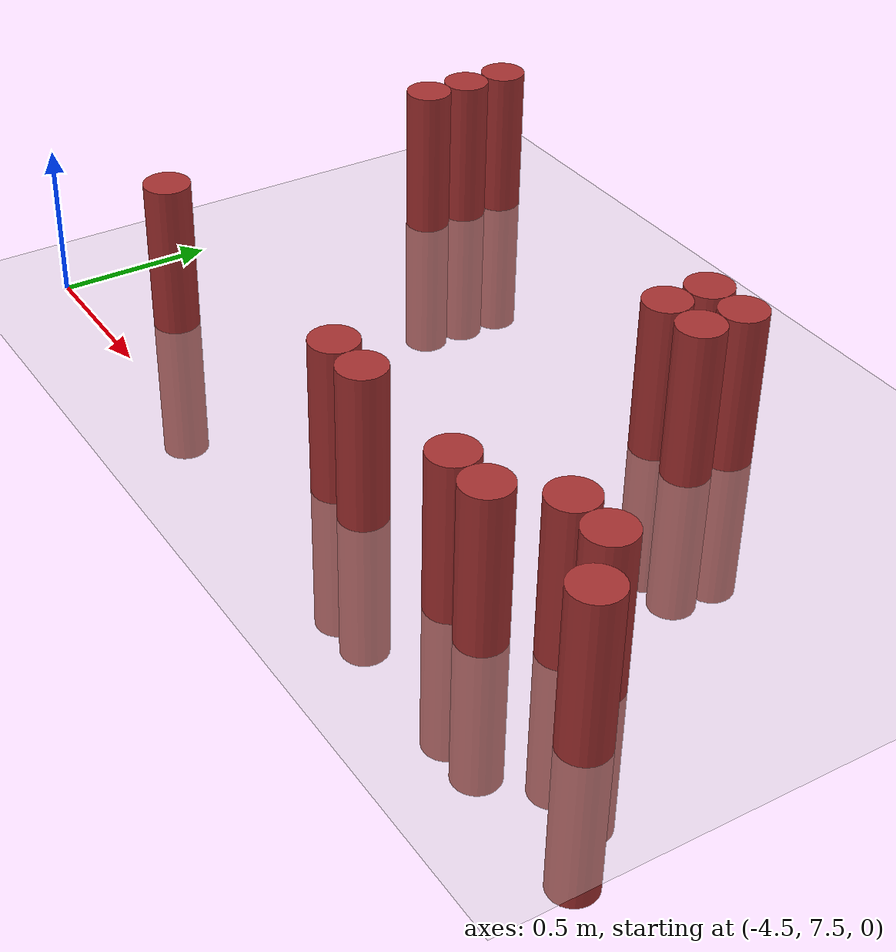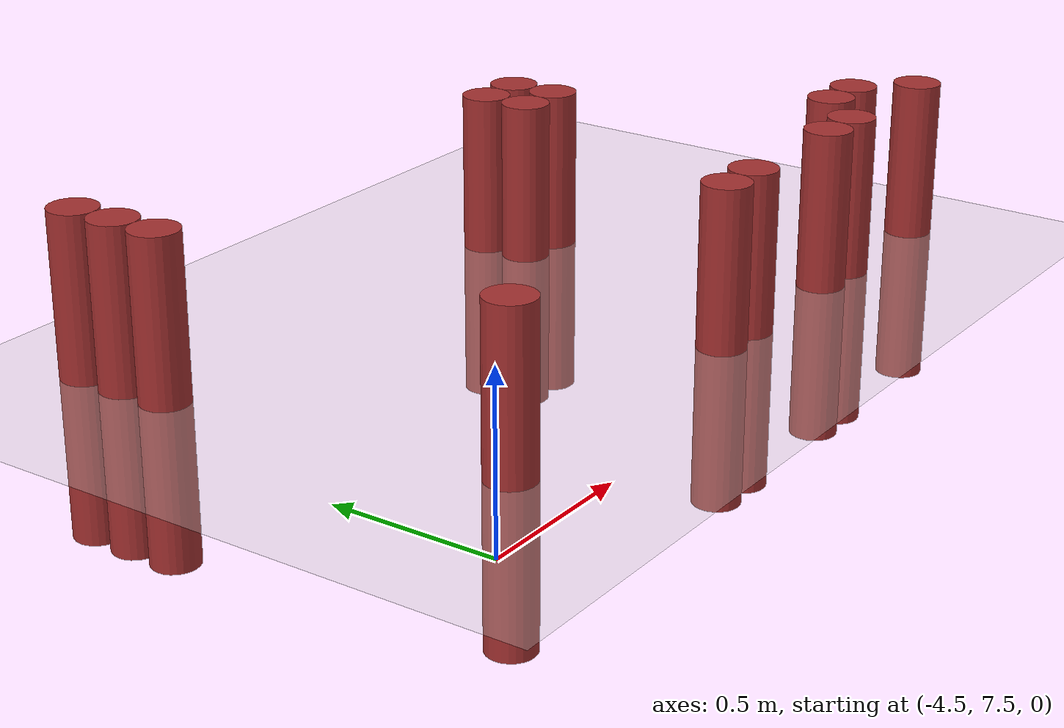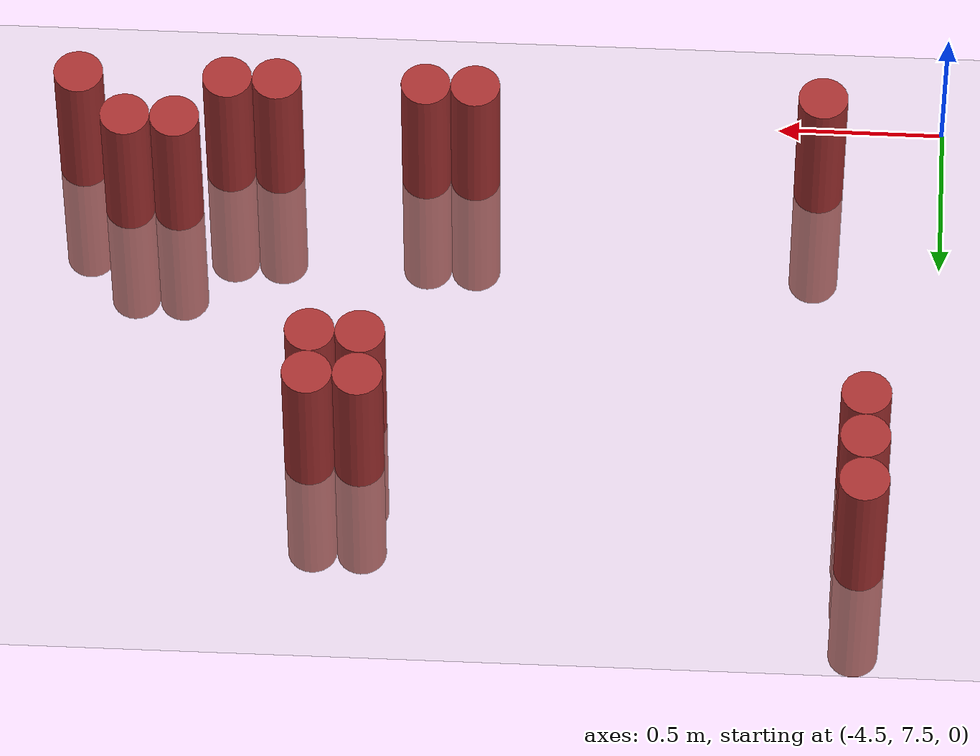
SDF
<sdf version="1.6">
 <world name="default">
  <model name="ground_plane">
   <static>1</static>
   <link name="link">
    <collision name="collision">
     <geometry><plane><normal>0 0 1</normal><size>100 100</size></plane></geometry>
     <surface><friction><ode><mu>100</mu><mu2>50</mu2></ode></friction></surface>
    </collision>
    <visual name="visual">
     <cast_shadows>0</cast_shadows>
     <geometry><plane><normal>0 0 1</normal><size>100 100</size></plane></geometry>
     <material>
      <script><uri>file://media/materials/scripts/gazebo.material</uri><name>Gazebo/Grey</name></script>
     </material>
    </visual>
   </link>
  </model>
  <model name="unit_cylinder_134">
   <static>1</static>
   <pose>-4.275000 8.775000 0.000000 0.000000 0.000000 0.000000</pose>
   <link name="link">
    <inertial>
     <mass>1</mass>
     <inertia><ixx>0.145833</ixx><ixy>0</ixy><ixz>0</ixz><iyy>0.145833</iyy><iyz>0</iyz><izz>0.125</izz></inertia>
    </inertial>
    <collision name="collision">
     <geometry><cylinder><radius>0.075000</radius><length>1</length></cylinder></geometry>
    </collision>
    <visual name="visual">
     <geometry><cylinder><radius>0.075000</radius><length>1</length></cylinder></geometry>
     <material>
      <ambient>0.648000 0.192000 0.192000 1</ambient>
      <diffuse>0.648000 0.192000 0.192000 1</diffuse>
     </material>
     <material>
      <script><name>Gazebo/Grey</name><uri>file://media/materials/scripts/gazebo.material</uri></script>
     </material>
    </visual>
   </link>
  </model>
  <model name="unit_cylinder_135">
   <static>1</static>
   <pose>-4.275000 8.925000 0.000000 0.000000 0.000000 0.000000</pose>
   <link name="link">
    <inertial>
     <mass>1</mass>
     <inertia><ixx>0.145833</ixx><ixy>0</ixy><ixz>0</ixz><iyy>0.145833</iyy><iyz>0</iyz><izz>0.125</izz></inertia>
    </inertial>
    <collision name="collision">
     <geometry><cylinder><radius>0.075000</radius><length>1</length></cylinder></geometry>
    </collision>
    <visual name="visual">
     <geometry><cylinder><radius>0.075000</radius><length>1</length></cylinder></geometry>
     <material>
      <ambient>0.648000 0.192000 0.192000 1</ambient>
      <diffuse>0.648000 0.192000 0.192000 1</diffuse>
     </material>
     <material>
      <script><name>Gazebo/Grey</name><uri>file://media/materials/scripts/gazebo.material</uri></script>
     </material>
    </visual>
   </link>
  </model>
  <model name="unit_cylinder_136">
   <static>1</static>
   <pose>-4.275000 9.075000 0.000000 0.000000 0.000000 0.000000</pose>
   <link name="link">
    <inertial>
     <mass>1</mass>
     <inertia><ixx>0.145833</ixx><ixy>0</ixy><ixz>0</ixz><iyy>0.145833</iyy><iyz>0</iyz><izz>0.125</izz></inertia>
    </inertial>
    <collision name="collision">
     <geometry><cylinder><radius>0.075000</radius><length>1</length></cylinder></geometry>
    </collision>
    <visual name="visual">
     <geometry><cylinder><radius>0.075000</radius><length>1</length></cylinder></geometry>
     <material>
      <ambient>0.648000 0.192000 0.192000 1</ambient>
      <diffuse>0.648000 0.192000 0.192000 1</diffuse>
     </material>
     <material>
      <script><name>Gazebo/Grey</name><uri>file://media/materials/scripts/gazebo.material</uri></script>
     </material>
    </visual>
   </link>
  </model>
  <model name="unit_cylinder_139">
   <static>1</static>
   <pose>-4.125000 7.725000 0.000000 0.000000 0.000000 0.000000</pose>
   <link name="link">
    <inertial>
     <mass>1</mass>
     <inertia><ixx>0.145833</ixx><ixy>0</ixy><ixz>0</ixz><iyy>0.145833</iyy><iyz>0</iyz><izz>0.125</izz></inertia>
    </inertial>
    <collision name="collision">
     <geometry><cylinder><radius>0.075000</radius><length>1</length></cylinder></geometry>
    </collision>
    <visual name="visual">
     <geometry><cylinder><radius>0.075000</radius><length>1</length></cylinder></geometry>
     <material>
      <ambient>0.648000 0.192000 0.192000 1</ambient>
      <diffuse>0.648000 0.192000 0.192000 1</diffuse>
     </material>
     <material>
      <script><name>Gazebo/Grey</name><uri>file://media/materials/scripts/gazebo.material</uri></script>
     </material>
    </visual>
   </link>
  </model>
  <model name="unit_cylinder_142">
   <static>1</static>
   <pose>-3.075000 7.725000 0.000000 0.000000 0.000000 0.000000</pose>
   <link name="link">
    <inertial>
     <mass>1</mass>
     <inertia><ixx>0.145833</ixx><ixy>0</ixy><ixz>0</ixz><iyy>0.145833</iyy><iyz>0</iyz><izz>0.125</izz></inertia>
    </inertial>
    <collision name="collision">
     <geometry><cylinder><radius>0.075000</radius><length>1</length></cylinder></geometry>
    </collision>
    <visual name="visual">
     <geometry><cylinder><radius>0.075000</radius><length>1</length></cylinder></geometry>
     <material>
      <ambient>0.648000 0.192000 0.192000 1</ambient>
      <diffuse>0.648000 0.192000 0.192000 1</diffuse>
     </material>
     <material>
      <script><name>Gazebo/Grey</name><uri>file://media/materials/scripts/gazebo.material</uri></script>
     </material>
    </visual>
   </link>
  </model>
  <model name="unit_cylinder_143">
   <static>1</static>
   <pose>-2.925000 7.725000 0.000000 0.000000 0.000000 0.000000</pose>
   <link name="link">
    <inertial>
     <mass>1</mass>
     <inertia><ixx>0.145833</ixx><ixy>0</ixy><ixz>0</ixz><iyy>0.145833</iyy><iyz>0</iyz><izz>0.125</izz></inertia>
    </inertial>
    <collision name="collision">
     <geometry><cylinder><radius>0.075000</radius><length>1</length></cylinder></geometry>
    </collision>
    <visual name="visual">
     <geometry><cylinder><radius>0.075000</radius><length>1</length></cylinder></geometry>
     <material>
      <ambient>0.648000 0.192000 0.192000 1</ambient>
      <diffuse>0.648000 0.192000 0.192000 1</diffuse>
     </material>
     <material>
      <script><name>Gazebo/Grey</name><uri>file://media/materials/scripts/gazebo.material</uri></script>
     </material>
    </visual>
   </link>
  </model>
  <model name="unit_cylinder_147">
   <static>1</static>
   <pose>-2.775000 8.625000 0.000000 0.000000 0.000000 0.000000</pose>
   <link name="link">
    <inertial>
     <mass>1</mass>
     <inertia><ixx>0.145833</ixx><ixy>0</ixy><ixz>0</ixz><iyy>0.145833</iyy><iyz>0</iyz><izz>0.125</izz></inertia>
    </inertial>
    <collision name="collision">
     <geometry><cylinder><radius>0.075000</radius><length>1</length></cylinder></geometry>
    </collision>
    <visual name="visual">
     <geometry><cylinder><radius>0.075000</radius><length>1</length></cylinder></geometry>
     <material>
      <ambient>0.648000 0.192000 0.192000 1</ambient>
      <diffuse>0.648000 0.192000 0.192000 1</diffuse>
     </material>
     <material>
      <script><name>Gazebo/Grey</name><uri>file://media/materials/scripts/gazebo.material</uri></script>
     </material>
    </visual>
   </link>
  </model>
  <model name="unit_cylinder_148">
   <static>1</static>
   <pose>-2.775000 8.775000 0.000000 0.000000 0.000000 0.000000</pose>
   <link name="link">
    <inertial>
     <mass>1</mass>
     <inertia><ixx>0.145833</ixx><ixy>0</ixy><ixz>0</ixz><iyy>0.145833</iyy><iyz>0</iyz><izz>0.125</izz></inertia>
    </inertial>
    <collision name="collision">
     <geometry><cylinder><radius>0.075000</radius><length>1</length></cylinder></geometry>
    </collision>
    <visual name="visual">
     <geometry><cylinder><radius>0.075000</radius><length>1</length></cylinder></geometry>
     <material>
      <ambient>0.648000 0.192000 0.192000 1</ambient>
      <diffuse>0.648000 0.192000 0.192000 1</diffuse>
     </material>
     <material>
      <script><name>Gazebo/Grey</name><uri>file://media/materials/scripts/gazebo.material</uri></script>
     </material>
    </visual>
   </link>
  </model>
  <model name="unit_cylinder_153">
   <static>1</static>
   <pose>-2.625000 8.625000 0.000000 0.000000 0.000000 0.000000</pose>
   <link name="link">
    <inertial>
     <mass>1</mass>
     <inertia><ixx>0.145833</ixx><ixy>0</ixy><ixz>0</ixz><iyy>0.145833</iyy><iyz>0</iyz><izz>0.125</izz></inertia>
    </inertial>
    <collision name="collision">
     <geometry><cylinder><radius>0.075000</radius><length>1</length></cylinder></geometry>
    </collision>
    <visual name="visual">
     <geometry><cylinder><radius>0.075000</radius><length>1</length></cylinder></geometry>
     <material>
      <ambient>0.648000 0.192000 0.192000 1</ambient>
      <diffuse>0.648000 0.192000 0.192000 1</diffuse>
     </material>
     <material>
      <script><name>Gazebo/Grey</name><uri>file://media/materials/scripts/gazebo.material</uri></script>
     </material>
    </visual>
   </link>
  </model>
  <model name="unit_cylinder_154">
   <static>1</static>
   <pose>-2.625000 8.775000 0.000000 0.000000 0.000000 0.000000</pose>
   <link name="link">
    <inertial>
     <mass>1</mass>
     <inertia><ixx>0.145833</ixx><ixy>0</ixy><ixz>0</ixz><iyy>0.145833</iyy><iyz>0</iyz><izz>0.125</izz></inertia>
    </inertial>
    <collision name="collision">
     <geometry><cylinder><radius>0.075000</radius><length>1</length></cylinder></geometry>
    </collision>
    <visual name="visual">
     <geometry><cylinder><radius>0.075000</radius><length>1</length></cylinder></geometry>
     <material>
      <ambient>0.648000 0.192000 0.192000 1</ambient>
      <diffuse>0.648000 0.192000 0.192000 1</diffuse>
     </material>
     <material>
      <script><name>Gazebo/Grey</name><uri>file://media/materials/scripts/gazebo.material</uri></script>
     </material>
    </visual>
   </link>
  </model>
  <model name="unit_cylinder_157">
   <static>1</static>
   <pose>-2.475000 7.725000 0.000000 0.000000 0.000000 0.000000</pose>
   <link name="link">
    <inertial>
     <mass>1</mass>
     <inertia><ixx>0.145833</ixx><ixy>0</ixy><ixz>0</ixz><iyy>0.145833</iyy><iyz>0</iyz><izz>0.125</izz></inertia>
    </inertial>
    <collision name="collision">
     <geometry><cylinder><radius>0.075000</radius><length>1</length></cylinder></geometry>
    </collision>
    <visual name="visual">
     <geometry><cylinder><radius>0.075000</radius><length>1</length></cylinder></geometry>
     <material>
      <ambient>0.648000 0.192000 0.192000 1</ambient>
      <diffuse>0.648000 0.192000 0.192000 1</diffuse>
     </material>
     <material>
      <script><name>Gazebo/Grey</name><uri>file://media/materials/scripts/gazebo.material</uri></script>
     </material>
    </visual>
   </link>
  </model>
  <model name="unit_cylinder_162">
   <static>1</static>
   <pose>-2.325000 7.725000 0.000000 0.000000 0.000000 0.000000</pose>
   <link name="link">
    <inertial>
     <mass>1</mass>
     <inertia><ixx>0.145833</ixx><ixy>0</ixy><ixz>0</ixz><iyy>0.145833</iyy><iyz>0</iyz><izz>0.125</izz></inertia>
    </inertial>
    <collision name="collision">
     <geometry><cylinder><radius>0.075000</radius><length>1</length></cylinder></geometry>
    </collision>
    <visual name="visual">
     <geometry><cylinder><radius>0.075000</radius><length>1</length></cylinder></geometry>
     <material>
      <ambient>0.648000 0.192000 0.192000 1</ambient>
      <diffuse>0.648000 0.192000 0.192000 1</diffuse>
     </material>
     <material>
      <script><name>Gazebo/Grey</name><uri>file://media/materials/scripts/gazebo.material</uri></script>
     </material>
    </visual>
   </link>
  </model>
  <model name="unit_cylinder_164">
   <static>1</static>
   <pose>-2.175000 7.875000 0.000000 0.000000 0.000000 0.000000</pose>
   <link name="link">
    <inertial>
     <mass>1</mass>
     <inertia><ixx>0.145833</ixx><ixy>0</ixy><ixz>0</ixz><iyy>0.145833</iyy><iyz>0</iyz><izz>0.125</izz></inertia>
    </inertial>
    <collision name="collision">
     <geometry><cylinder><radius>0.075000</radius><length>1</length></cylinder></geometry>
    </collision>
    <visual name="visual">
     <geometry><cylinder><radius>0.075000</radius><length>1</length></cylinder></geometry>
     <material>
      <ambient>0.648000 0.192000 0.192000 1</ambient>
      <diffuse>0.648000 0.192000 0.192000 1</diffuse>
     </material>
     <material>
      <script><name>Gazebo/Grey</name><uri>file://media/materials/scripts/gazebo.material</uri></script>
     </material>
    </visual>
   </link>
  </model>
  <model name="unit_cylinder_165">
   <static>1</static>
   <pose>-2.025000 7.875000 0.000000 0.000000 0.000000 0.000000</pose>
   <link name="link">
    <inertial>
     <mass>1</mass>
     <inertia><ixx>0.145833</ixx><ixy>0</ixy><ixz>0</ixz><iyy>0.145833</iyy><iyz>0</iyz><izz>0.125</izz></inertia>
    </inertial>
    <collision name="collision">
     <geometry><cylinder><radius>0.075000</radius><length>1</length></cylinder></geometry>
    </collision>
    <visual name="visual">
     <geometry><cylinder><radius>0.075000</radius><length>1</length></cylinder></geometry>
     <material>
      <ambient>0.648000 0.192000 0.192000 1</ambient>
      <diffuse>0.648000 0.192000 0.192000 1</diffuse>
     </material>
     <material>
      <script><name>Gazebo/Grey</name><uri>file://media/materials/scripts/gazebo.material</uri></script>
     </material>
    </visual>
   </link>
  </model>
  <model name="unit_cylinder_166">
   <static>1</static>
   <pose>-1.875000 7.725000 0.000000 0.000000 0.000000 0.000000</pose>
   <link name="link">
    <inertial>
     <mass>1</mass>
     <inertia><ixx>0.145833</ixx><ixy>0</ixy><ixz>0</ixz><iyy>0.145833</iyy><iyz>0</iyz><izz>0.125</izz></inertia>
    </inertial>
    <collision name="collision">
     <geometry><cylinder><radius>0.075000</radius><length>1</length></cylinder></geometry>
    </collision>
    <visual name="visual">
     <geometry><cylinder><radius>0.075000</radius><length>1</length></cylinder></geometry>
     <material>
      <ambient>0.648000 0.192000 0.192000 1</ambient>
      <diffuse>0.648000 0.192000 0.192000 1</diffuse>
     </material>
     <material>
      <script><name>Gazebo/Grey</name><uri>file://media/materials/scripts/gazebo.material</uri></script>
     </material>
    </visual>
   </link>
  </model>
 </world>
</sdf>
